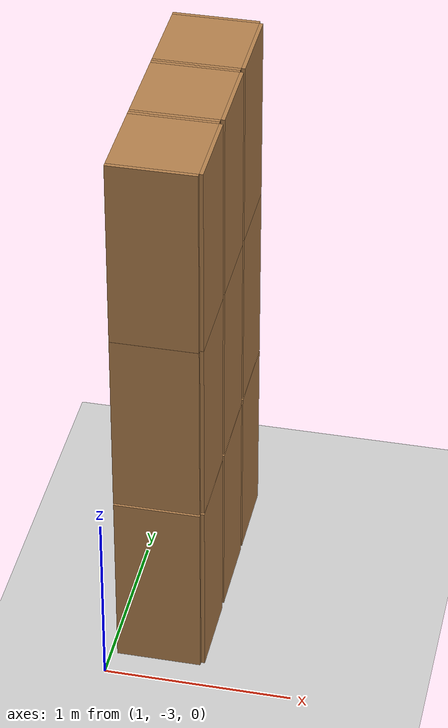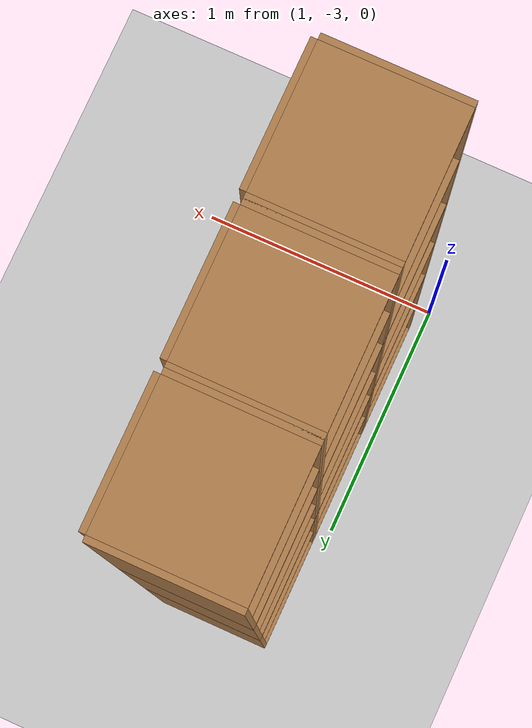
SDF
<sdf version="1.6">
 <world name="default">
  <model name="ground_plane">
   <static>1</static>
   <link name="link">
    <collision name="collision">
     <geometry><plane><normal>0 0 1</normal><size>100 100</size></plane></geometry>
     <surface>
      <contact><collide_bitmask>65535</collide_bitmask></contact>
      <friction><ode><mu>100</mu><mu2>50</mu2></ode></friction>
     </surface>
    </collision>
    <visual name="visual">
     <cast_shadows>0</cast_shadows>
     <geometry><plane><normal>0 0 1</normal><size>100 100</size></plane></geometry>
     <material>
      <script><uri>file://media/materials/scripts/gazebo.material</uri><name>Gazebo/Grey</name></script>
     </material>
    </visual>
   </link>
  </model>
  <model name="Locker18_clone_3_clone">
   <model name="Locker18">
    <model name="Locker3">
     <model name="cabinet">
      <static>1</static>
      <link name="cabinet_bottom_plate">
       <inertial>
        <pose>0 0 -1 0 -0 0</pose>
        <inertia><ixx>2.05</ixx><ixy>0</ixy><ixz>0</ixz><iyy>2.05</iyy><iyz>0</iyz><izz>2.05</izz></inertia>
        <mass>25</mass>
       </inertial>
       <collision name="cabinet_bottom_plate_geom">
        <pose>0 0 0.01 0 -0 0</pose>
        <geometry><box><size>0.45 0.45 0.02</size></box></geometry>
       </collision>
       <visual name="cabinet_bottom_plate_geom_visual">
        <pose>0 0 0.01 0 -0 0</pose>
        <geometry><box><size>0.45 0.45 0.02</size></box></geometry>
        <material>
         <script><uri>file://media/materials/scripts/gazebo.material</uri><name>Gazebo/Wood</name></script>
        </material>
       </visual>
       <collision name="cabinet_bottom_plate_geom_cabinet_back_plate">
        <pose>0.235 0 0.51 0 -0 0</pose>
        <geometry><box><size>0.02 0.45 1.02</size></box></geometry>
       </collision>
       <visual name="cabinet_bottom_plate_geom_cabinet_back_plate_visual">
        <pose>0.235 0 0.51 0 -0 0</pose>
        <geometry><box><size>0.02 0.45 1.02</size></box></geometry>
        <material>
         <script><uri>file://media/materials/scripts/gazebo.material</uri><name>Gazebo/Wood</name></script>
        </material>
       </visual>
       <collision name="cabinet_bottom_plate_geom_cabinet_left_plate">
        <pose>0 0.235 0.51 0 -0 0</pose>
        <geometry><box><size>0.45 0.02 1.02</size></box></geometry>
       </collision>
       <visual name="cabinet_bottom_plate_geom_cabinet_left_plate_visual">
        <pose>0 0.235 0.51 0 -0 0</pose>
        <geometry><box><size>0.45 0.02 1.02</size></box></geometry>
        <material>
         <script><uri>file://media/materials/scripts/gazebo.material</uri><name>Gazebo/Wood</name></script>
        </material>
       </visual>
       <collision name="cabinet_bottom_plate_geom_cabinet_middle_plate">
        <pose>0 0 0.51 0 -0 0</pose>
        <geometry><box><size>0.45 0.45 0.02</size></box></geometry>
       </collision>
       <visual name="cabinet_bottom_plate_geom_cabinet_middle_plate_visual">
        <pose>0 0 0.51 0 -0 0</pose>
        <geometry><box><size>0.45 0.45 0.02</size></box></geometry>
        <material>
         <script><uri>file://media/materials/scripts/gazebo.material</uri><name>Gazebo/Wood</name></script>
        </material>
       </visual>
       <collision name="cabinet_bottom_plate_geom_cabinet_right_plate">
        <pose>0 -0.235 0.51 0 -0 0</pose>
        <geometry><box><size>0.45 0.02 1.02</size></box></geometry>
       </collision>
       <visual name="cabinet_bottom_plate_geom_cabinet_right_plate_visual">
        <pose>0 -0.235 0.51 0 -0 0</pose>
        <geometry><box><size>0.45 0.02 1.02</size></box></geometry>
        <material>
         <script><uri>file://media/materials/scripts/gazebo.material</uri><name>Gazebo/Wood</name></script>
        </material>
       </visual>
       <collision name="cabinet_bottom_plate_geom_cabinet_top_plate">
        <pose>0 0 1.01 0 -0 0</pose>
        <geometry><box><size>0.45 0.45 0.02</size></box></geometry>
       </collision>
       <visual name="cabinet_bottom_plate_geom_cabinet_top_plate_visual">
        <pose>0 0 1.01 0 -0 0</pose>
        <geometry><box><size>0.45 0.45 0.02</size></box></geometry>
        <material>
         <script><uri>file://media/materials/scripts/gazebo.material</uri><name>Gazebo/Wood</name></script>
        </material>
       </visual>
      </link>
      <pose>-0.676968 1.45758 0 0 -0 0</pose>
     </model>
     <model name="cabinet_clone">
      <static>1</static>
      <link name="cabinet_bottom_plate">
       <inertial>
        <pose>0 0 -1 0 -0 0</pose>
        <inertia><ixx>2.05</ixx><ixy>0</ixy><ixz>0</ixz><iyy>2.05</iyy><iyz>0</iyz><izz>2.05</izz></inertia>
        <mass>25</mass>
       </inertial>
       <collision name="cabinet_bottom_plate_geom">
        <pose>0 0 0.01 0 -0 0</pose>
        <geometry><box><size>0.45 0.45 0.02</size></box></geometry>
       </collision>
       <visual name="cabinet_bottom_plate_geom_visual">
        <pose>0 0 0.01 0 -0 0</pose>
        <geometry><box><size>0.45 0.45 0.02</size></box></geometry>
        <material>
         <script><uri>file://media/materials/scripts/gazebo.material</uri><name>Gazebo/Wood</name></script>
        </material>
       </visual>
       <collision name="cabinet_bottom_plate_geom_cabinet_back_plate">
        <pose>0.235 0 0.51 0 -0 0</pose>
        <geometry><box><size>0.02 0.45 1.02</size></box></geometry>
       </collision>
       <visual name="cabinet_bottom_plate_geom_cabinet_back_plate_visual">
        <pose>0.235 0 0.51 0 -0 0</pose>
        <geometry><box><size>0.02 0.45 1.02</size></box></geometry>
        <material>
         <script><uri>file://media/materials/scripts/gazebo.material</uri><name>Gazebo/Wood</name></script>
        </material>
       </visual>
       <collision name="cabinet_bottom_plate_geom_cabinet_left_plate">
        <pose>0 0.235 0.51 0 -0 0</pose>
        <geometry><box><size>0.45 0.02 1.02</size></box></geometry>
       </collision>
       <visual name="cabinet_bottom_plate_geom_cabinet_left_plate_visual">
        <pose>0 0.235 0.51 0 -0 0</pose>
        <geometry><box><size>0.45 0.02 1.02</size></box></geometry>
        <material>
         <script><uri>file://media/materials/scripts/gazebo.material</uri><name>Gazebo/Wood</name></script>
        </material>
       </visual>
       <collision name="cabinet_bottom_plate_geom_cabinet_middle_plate">
        <pose>0 0 0.51 0 -0 0</pose>
        <geometry><box><size>0.45 0.45 0.02</size></box></geometry>
       </collision>
       <visual name="cabinet_bottom_plate_geom_cabinet_middle_plate_visual">
        <pose>0 0 0.51 0 -0 0</pose>
        <geometry><box><size>0.45 0.45 0.02</size></box></geometry>
        <material>
         <script><uri>file://media/materials/scripts/gazebo.material</uri><name>Gazebo/Wood</name></script>
        </material>
       </visual>
       <collision name="cabinet_bottom_plate_geom_cabinet_right_plate">
        <pose>0 -0.235 0.51 0 -0 0</pose>
        <geometry><box><size>0.45 0.02 1.02</size></box></geometry>
       </collision>
       <visual name="cabinet_bottom_plate_geom_cabinet_right_plate_visual">
        <pose>0 -0.235 0.51 0 -0 0</pose>
        <geometry><box><size>0.45 0.02 1.02</size></box></geometry>
        <material>
         <script><uri>file://media/materials/scripts/gazebo.material</uri><name>Gazebo/Wood</name></script>
        </material>
       </visual>
       <collision name="cabinet_bottom_plate_geom_cabinet_top_plate">
        <pose>0 0 1.01 0 -0 0</pose>
        <geometry><box><size>0.45 0.45 0.02</size></box></geometry>
       </collision>
       <visual name="cabinet_bottom_plate_geom_cabinet_top_plate_visual">
        <pose>0 0 1.01 0 -0 0</pose>
        <geometry><box><size>0.45 0.45 0.02</size></box></geometry>
        <material>
         <script><uri>file://media/materials/scripts/gazebo.material</uri><name>Gazebo/Wood</name></script>
        </material>
       </visual>
      </link>
      <pose>-0.676968 0.970971 0 0 -0 0</pose>
     </model>
     <model name="cabinet_clone_0">
      <static>1</static>
      <link name="cabinet_bottom_plate">
       <inertial>
        <pose>0 0 -1 0 -0 0</pose>
        <inertia><ixx>2.05</ixx><ixy>0</ixy><ixz>0</ixz><iyy>2.05</iyy><iyz>0</iyz><izz>2.05</izz></inertia>
        <mass>25</mass>
       </inertial>
       <collision name="cabinet_bottom_plate_geom">
        <pose>0 0 0.01 0 -0 0</pose>
        <geometry><box><size>0.45 0.45 0.02</size></box></geometry>
       </collision>
       <visual name="cabinet_bottom_plate_geom_visual">
        <pose>0 0 0.01 0 -0 0</pose>
        <geometry><box><size>0.45 0.45 0.02</size></box></geometry>
        <material>
         <script><uri>file://media/materials/scripts/gazebo.material</uri><name>Gazebo/Wood</name></script>
        </material>
       </visual>
       <collision name="cabinet_bottom_plate_geom_cabinet_back_plate">
        <pose>0.235 0 0.51 0 -0 0</pose>
        <geometry><box><size>0.02 0.45 1.02</size></box></geometry>
       </collision>
       <visual name="cabinet_bottom_plate_geom_cabinet_back_plate_visual">
        <pose>0.235 0 0.51 0 -0 0</pose>
        <geometry><box><size>0.02 0.45 1.02</size></box></geometry>
        <material>
         <script><uri>file://media/materials/scripts/gazebo.material</uri><name>Gazebo/Wood</name></script>
        </material>
       </visual>
       <collision name="cabinet_bottom_plate_geom_cabinet_left_plate">
        <pose>0 0.235 0.51 0 -0 0</pose>
        <geometry><box><size>0.45 0.02 1.02</size></box></geometry>
       </collision>
       <visual name="cabinet_bottom_plate_geom_cabinet_left_plate_visual">
        <pose>0 0.235 0.51 0 -0 0</pose>
        <geometry><box><size>0.45 0.02 1.02</size></box></geometry>
        <material>
         <script><uri>file://media/materials/scripts/gazebo.material</uri><name>Gazebo/Wood</name></script>
        </material>
       </visual>
       <collision name="cabinet_bottom_plate_geom_cabinet_middle_plate">
        <pose>0 0 0.51 0 -0 0</pose>
        <geometry><box><size>0.45 0.45 0.02</size></box></geometry>
       </collision>
       <visual name="cabinet_bottom_plate_geom_cabinet_middle_plate_visual">
        <pose>0 0 0.51 0 -0 0</pose>
        <geometry><box><size>0.45 0.45 0.02</size></box></geometry>
        <material>
         <script><uri>file://media/materials/scripts/gazebo.material</uri><name>Gazebo/Wood</name></script>
        </material>
       </visual>
       <collision name="cabinet_bottom_plate_geom_cabinet_right_plate">
        <pose>0 -0.235 0.51 0 -0 0</pose>
        <geometry><box><size>0.45 0.02 1.02</size></box></geometry>
       </collision>
       <visual name="cabinet_bottom_plate_geom_cabinet_right_plate_visual">
        <pose>0 -0.235 0.51 0 -0 0</pose>
        <geometry><box><size>0.45 0.02 1.02</size></box></geometry>
        <material>
         <script><uri>file://media/materials/scripts/gazebo.material</uri><name>Gazebo/Wood</name></script>
        </material>
       </visual>
       <collision name="cabinet_bottom_plate_geom_cabinet_top_plate">
        <pose>0 0 1.01 0 -0 0</pose>
        <geometry><box><size>0.45 0.45 0.02</size></box></geometry>
       </collision>
       <visual name="cabinet_bottom_plate_geom_cabinet_top_plate_visual">
        <pose>0 0 1.01 0 -0 0</pose>
        <geometry><box><size>0.45 0.45 0.02</size></box></geometry>
        <material>
         <script><uri>file://media/materials/scripts/gazebo.material</uri><name>Gazebo/Wood</name></script>
        </material>
       </visual>
      </link>
      <pose>-0.676968 0.48391 0 0 -0 0</pose>
     </model>
     <static>0</static>
     <pose>0 3e-06 -1.02763 0 -0 0</pose>
    </model>
    <model name="Locker3_clone">
     <model name="cabinet">
      <static>1</static>
      <link name="cabinet_bottom_plate">
       <inertial>
        <pose>0 0 -1 0 -0 0</pose>
        <inertia><ixx>2.05</ixx><ixy>0</ixy><ixz>0</ixz><iyy>2.05</iyy><iyz>0</iyz><izz>2.05</izz></inertia>
        <mass>25</mass>
       </inertial>
       <collision name="cabinet_bottom_plate_geom">
        <pose>0 0 0.01 0 -0 0</pose>
        <geometry><box><size>0.45 0.45 0.02</size></box></geometry>
       </collision>
       <visual name="cabinet_bottom_plate_geom_visual">
        <pose>0 0 0.01 0 -0 0</pose>
        <geometry><box><size>0.45 0.45 0.02</size></box></geometry>
        <material>
         <script><uri>file://media/materials/scripts/gazebo.material</uri><name>Gazebo/Wood</name></script>
        </material>
       </visual>
       <collision name="cabinet_bottom_plate_geom_cabinet_back_plate">
        <pose>0.235 0 0.51 0 -0 0</pose>
        <geometry><box><size>0.02 0.45 1.02</size></box></geometry>
       </collision>
       <visual name="cabinet_bottom_plate_geom_cabinet_back_plate_visual">
        <pose>0.235 0 0.51 0 -0 0</pose>
        <geometry><box><size>0.02 0.45 1.02</size></box></geometry>
        <material>
         <script><uri>file://media/materials/scripts/gazebo.material</uri><name>Gazebo/Wood</name></script>
        </material>
       </visual>
       <collision name="cabinet_bottom_plate_geom_cabinet_left_plate">
        <pose>0 0.235 0.51 0 -0 0</pose>
        <geometry><box><size>0.45 0.02 1.02</size></box></geometry>
       </collision>
       <visual name="cabinet_bottom_plate_geom_cabinet_left_plate_visual">
        <pose>0 0.235 0.51 0 -0 0</pose>
        <geometry><box><size>0.45 0.02 1.02</size></box></geometry>
        <material>
         <script><uri>file://media/materials/scripts/gazebo.material</uri><name>Gazebo/Wood</name></script>
        </material>
       </visual>
       <collision name="cabinet_bottom_plate_geom_cabinet_middle_plate">
        <pose>0 0 0.51 0 -0 0</pose>
        <geometry><box><size>0.45 0.45 0.02</size></box></geometry>
       </collision>
       <visual name="cabinet_bottom_plate_geom_cabinet_middle_plate_visual">
        <pose>0 0 0.51 0 -0 0</pose>
        <geometry><box><size>0.45 0.45 0.02</size></box></geometry>
        <material>
         <script><uri>file://media/materials/scripts/gazebo.material</uri><name>Gazebo/Wood</name></script>
        </material>
       </visual>
       <collision name="cabinet_bottom_plate_geom_cabinet_right_plate">
        <pose>0 -0.235 0.51 0 -0 0</pose>
        <geometry><box><size>0.45 0.02 1.02</size></box></geometry>
       </collision>
       <visual name="cabinet_bottom_plate_geom_cabinet_right_plate_visual">
        <pose>0 -0.235 0.51 0 -0 0</pose>
        <geometry><box><size>0.45 0.02 1.02</size></box></geometry>
        <material>
         <script><uri>file://media/materials/scripts/gazebo.material</uri><name>Gazebo/Wood</name></script>
        </material>
       </visual>
       <collision name="cabinet_bottom_plate_geom_cabinet_top_plate">
        <pose>0 0 1.01 0 -0 0</pose>
        <geometry><box><size>0.45 0.45 0.02</size></box></geometry>
       </collision>
       <visual name="cabinet_bottom_plate_geom_cabinet_top_plate_visual">
        <pose>0 0 1.01 0 -0 0</pose>
        <geometry><box><size>0.45 0.45 0.02</size></box></geometry>
        <material>
         <script><uri>file://media/materials/scripts/gazebo.material</uri><name>Gazebo/Wood</name></script>
        </material>
       </visual>
      </link>
      <pose>-0.676968 1.45758 0 0 -0 0</pose>
     </model>
     <model name="cabinet_clone">
      <static>1</static>
      <link name="cabinet_bottom_plate">
       <inertial>
        <pose>0 0 -1 0 -0 0</pose>
        <inertia><ixx>2.05</ixx><ixy>0</ixy><ixz>0</ixz><iyy>2.05</iyy><iyz>0</iyz><izz>2.05</izz></inertia>
        <mass>25</mass>
       </inertial>
       <collision name="cabinet_bottom_plate_geom">
        <pose>0 0 0.01 0 -0 0</pose>
        <geometry><box><size>0.45 0.45 0.02</size></box></geometry>
       </collision>
       <visual name="cabinet_bottom_plate_geom_visual">
        <pose>0 0 0.01 0 -0 0</pose>
        <geometry><box><size>0.45 0.45 0.02</size></box></geometry>
        <material>
         <script><uri>file://media/materials/scripts/gazebo.material</uri><name>Gazebo/Wood</name></script>
        </material>
       </visual>
       <collision name="cabinet_bottom_plate_geom_cabinet_back_plate">
        <pose>0.235 0 0.51 0 -0 0</pose>
        <geometry><box><size>0.02 0.45 1.02</size></box></geometry>
       </collision>
       <visual name="cabinet_bottom_plate_geom_cabinet_back_plate_visual">
        <pose>0.235 0 0.51 0 -0 0</pose>
        <geometry><box><size>0.02 0.45 1.02</size></box></geometry>
        <material>
         <script><uri>file://media/materials/scripts/gazebo.material</uri><name>Gazebo/Wood</name></script>
        </material>
       </visual>
       <collision name="cabinet_bottom_plate_geom_cabinet_left_plate">
        <pose>0 0.235 0.51 0 -0 0</pose>
        <geometry><box><size>0.45 0.02 1.02</size></box></geometry>
       </collision>
       <visual name="cabinet_bottom_plate_geom_cabinet_left_plate_visual">
        <pose>0 0.235 0.51 0 -0 0</pose>
        <geometry><box><size>0.45 0.02 1.02</size></box></geometry>
        <material>
         <script><uri>file://media/materials/scripts/gazebo.material</uri><name>Gazebo/Wood</name></script>
        </material>
       </visual>
       <collision name="cabinet_bottom_plate_geom_cabinet_middle_plate">
        <pose>0 0 0.51 0 -0 0</pose>
        <geometry><box><size>0.45 0.45 0.02</size></box></geometry>
       </collision>
       <visual name="cabinet_bottom_plate_geom_cabinet_middle_plate_visual">
        <pose>0 0 0.51 0 -0 0</pose>
        <geometry><box><size>0.45 0.45 0.02</size></box></geometry>
        <material>
         <script><uri>file://media/materials/scripts/gazebo.material</uri><name>Gazebo/Wood</name></script>
        </material>
       </visual>
       <collision name="cabinet_bottom_plate_geom_cabinet_right_plate">
        <pose>0 -0.235 0.51 0 -0 0</pose>
        <geometry><box><size>0.45 0.02 1.02</size></box></geometry>
       </collision>
       <visual name="cabinet_bottom_plate_geom_cabinet_right_plate_visual">
        <pose>0 -0.235 0.51 0 -0 0</pose>
        <geometry><box><size>0.45 0.02 1.02</size></box></geometry>
        <material>
         <script><uri>file://media/materials/scripts/gazebo.material</uri><name>Gazebo/Wood</name></script>
        </material>
       </visual>
       <collision name="cabinet_bottom_plate_geom_cabinet_top_plate">
        <pose>0 0 1.01 0 -0 0</pose>
        <geometry><box><size>0.45 0.45 0.02</size></box></geometry>
       </collision>
       <visual name="cabinet_bottom_plate_geom_cabinet_top_plate_visual">
        <pose>0 0 1.01 0 -0 0</pose>
        <geometry><box><size>0.45 0.45 0.02</size></box></geometry>
        <material>
         <script><uri>file://media/materials/scripts/gazebo.material</uri><name>Gazebo/Wood</name></script>
        </material>
       </visual>
      </link>
      <pose>-0.676968 0.970971 0 0 -0 0</pose>
     </model>
     <model name="cabinet_clone_0">
      <static>1</static>
      <link name="cabinet_bottom_plate">
       <inertial>
        <pose>0 0 -1 0 -0 0</pose>
        <inertia><ixx>2.05</ixx><ixy>0</ixy><ixz>0</ixz><iyy>2.05</iyy><iyz>0</iyz><izz>2.05</izz></inertia>
        <mass>25</mass>
       </inertial>
       <collision name="cabinet_bottom_plate_geom">
        <pose>0 0 0.01 0 -0 0</pose>
        <geometry><box><size>0.45 0.45 0.02</size></box></geometry>
       </collision>
       <visual name="cabinet_bottom_plate_geom_visual">
        <pose>0 0 0.01 0 -0 0</pose>
        <geometry><box><size>0.45 0.45 0.02</size></box></geometry>
        <material>
         <script><uri>file://media/materials/scripts/gazebo.material</uri><name>Gazebo/Wood</name></script>
        </material>
       </visual>
       <collision name="cabinet_bottom_plate_geom_cabinet_back_plate">
        <pose>0.235 0 0.51 0 -0 0</pose>
        <geometry><box><size>0.02 0.45 1.02</size></box></geometry>
       </collision>
       <visual name="cabinet_bottom_plate_geom_cabinet_back_plate_visual">
        <pose>0.235 0 0.51 0 -0 0</pose>
        <geometry><box><size>0.02 0.45 1.02</size></box></geometry>
        <material>
         <script><uri>file://media/materials/scripts/gazebo.material</uri><name>Gazebo/Wood</name></script>
        </material>
       </visual>
       <collision name="cabinet_bottom_plate_geom_cabinet_left_plate">
        <pose>0 0.235 0.51 0 -0 0</pose>
        <geometry><box><size>0.45 0.02 1.02</size></box></geometry>
       </collision>
       <visual name="cabinet_bottom_plate_geom_cabinet_left_plate_visual">
        <pose>0 0.235 0.51 0 -0 0</pose>
        <geometry><box><size>0.45 0.02 1.02</size></box></geometry>
        <material>
         <script><uri>file://media/materials/scripts/gazebo.material</uri><name>Gazebo/Wood</name></script>
        </material>
       </visual>
       <collision name="cabinet_bottom_plate_geom_cabinet_middle_plate">
        <pose>0 0 0.51 0 -0 0</pose>
        <geometry><box><size>0.45 0.45 0.02</size></box></geometry>
       </collision>
       <visual name="cabinet_bottom_plate_geom_cabinet_middle_plate_visual">
        <pose>0 0 0.51 0 -0 0</pose>
        <geometry><box><size>0.45 0.45 0.02</size></box></geometry>
        <material>
         <script><uri>file://media/materials/scripts/gazebo.material</uri><name>Gazebo/Wood</name></script>
        </material>
       </visual>
       <collision name="cabinet_bottom_plate_geom_cabinet_right_plate">
        <pose>0 -0.235 0.51 0 -0 0</pose>
        <geometry><box><size>0.45 0.02 1.02</size></box></geometry>
       </collision>
       <visual name="cabinet_bottom_plate_geom_cabinet_right_plate_visual">
        <pose>0 -0.235 0.51 0 -0 0</pose>
        <geometry><box><size>0.45 0.02 1.02</size></box></geometry>
        <material>
         <script><uri>file://media/materials/scripts/gazebo.material</uri><name>Gazebo/Wood</name></script>
        </material>
       </visual>
       <collision name="cabinet_bottom_plate_geom_cabinet_top_plate">
        <pose>0 0 1.01 0 -0 0</pose>
        <geometry><box><size>0.45 0.45 0.02</size></box></geometry>
       </collision>
       <visual name="cabinet_bottom_plate_geom_cabinet_top_plate_visual">
        <pose>0 0 1.01 0 -0 0</pose>
        <geometry><box><size>0.45 0.45 0.02</size></box></geometry>
        <material>
         <script><uri>file://media/materials/scripts/gazebo.material</uri><name>Gazebo/Wood</name></script>
        </material>
       </visual>
      </link>
      <pose>-0.676968 0.48391 0 0 -0 0</pose>
     </model>
     <static>0</static>
     <pose>0 3e-06 0.003717 0 -0 0</pose>
    </model>
    <model name="Locker3_clone_clone">
     <model name="cabinet">
      <static>1</static>
      <link name="cabinet_bottom_plate">
       <inertial>
        <pose>0 0 -1 0 -0 0</pose>
        <inertia><ixx>2.05</ixx><ixy>0</ixy><ixz>0</ixz><iyy>2.05</iyy><iyz>0</iyz><izz>2.05</izz></inertia>
        <mass>25</mass>
       </inertial>
       <collision name="cabinet_bottom_plate_geom">
        <pose>0 0 0.01 0 -0 0</pose>
        <geometry><box><size>0.45 0.45 0.02</size></box></geometry>
       </collision>
       <visual name="cabinet_bottom_plate_geom_visual">
        <pose>0 0 0.01 0 -0 0</pose>
        <geometry><box><size>0.45 0.45 0.02</size></box></geometry>
        <material>
         <script><uri>file://media/materials/scripts/gazebo.material</uri><name>Gazebo/Wood</name></script>
        </material>
       </visual>
       <collision name="cabinet_bottom_plate_geom_cabinet_back_plate">
        <pose>0.235 0 0.51 0 -0 0</pose>
        <geometry><box><size>0.02 0.45 1.02</size></box></geometry>
       </collision>
       <visual name="cabinet_bottom_plate_geom_cabinet_back_plate_visual">
        <pose>0.235 0 0.51 0 -0 0</pose>
        <geometry><box><size>0.02 0.45 1.02</size></box></geometry>
        <material>
         <script><uri>file://media/materials/scripts/gazebo.material</uri><name>Gazebo/Wood</name></script>
        </material>
       </visual>
       <collision name="cabinet_bottom_plate_geom_cabinet_left_plate">
        <pose>0 0.235 0.51 0 -0 0</pose>
        <geometry><box><size>0.45 0.02 1.02</size></box></geometry>
       </collision>
       <visual name="cabinet_bottom_plate_geom_cabinet_left_plate_visual">
        <pose>0 0.235 0.51 0 -0 0</pose>
        <geometry><box><size>0.45 0.02 1.02</size></box></geometry>
        <material>
         <script><uri>file://media/materials/scripts/gazebo.material</uri><name>Gazebo/Wood</name></script>
        </material>
       </visual>
       <collision name="cabinet_bottom_plate_geom_cabinet_middle_plate">
        <pose>0 0 0.51 0 -0 0</pose>
        <geometry><box><size>0.45 0.45 0.02</size></box></geometry>
       </collision>
       <visual name="cabinet_bottom_plate_geom_cabinet_middle_plate_visual">
        <pose>0 0 0.51 0 -0 0</pose>
        <geometry><box><size>0.45 0.45 0.02</size></box></geometry>
        <material>
         <script><uri>file://media/materials/scripts/gazebo.material</uri><name>Gazebo/Wood</name></script>
        </material>
       </visual>
       <collision name="cabinet_bottom_plate_geom_cabinet_right_plate">
        <pose>0 -0.235 0.51 0 -0 0</pose>
        <geometry><box><size>0.45 0.02 1.02</size></box></geometry>
       </collision>
       <visual name="cabinet_bottom_plate_geom_cabinet_right_plate_visual">
        <pose>0 -0.235 0.51 0 -0 0</pose>
        <geometry><box><size>0.45 0.02 1.02</size></box></geometry>
        <material>
         <script><uri>file://media/materials/scripts/gazebo.material</uri><name>Gazebo/Wood</name></script>
        </material>
       </visual>
       <collision name="cabinet_bottom_plate_geom_cabinet_top_plate">
        <pose>0 0 1.01 0 -0 0</pose>
        <geometry><box><size>0.45 0.45 0.02</size></box></geometry>
       </collision>
       <visual name="cabinet_bottom_plate_geom_cabinet_top_plate_visual">
        <pose>0 0 1.01 0 -0 0</pose>
        <geometry><box><size>0.45 0.45 0.02</size></box></geometry>
        <material>
         <script><uri>file://media/materials/scripts/gazebo.material</uri><name>Gazebo/Wood</name></script>
        </material>
       </visual>
      </link>
      <pose>-0.676968 1.45758 0 0 -0 0</pose>
     </model>
     <model name="cabinet_clone">
      <static>1</static>
      <link name="cabinet_bottom_plate">
       <inertial>
        <pose>0 0 -1 0 -0 0</pose>
        <inertia><ixx>2.05</ixx><ixy>0</ixy><ixz>0</ixz><iyy>2.05</iyy><iyz>0</iyz><izz>2.05</izz></inertia>
        <mass>25</mass>
       </inertial>
       <collision name="cabinet_bottom_plate_geom">
        <pose>0 0 0.01 0 -0 0</pose>
        <geometry><box><size>0.45 0.45 0.02</size></box></geometry>
       </collision>
       <visual name="cabinet_bottom_plate_geom_visual">
        <pose>0 0 0.01 0 -0 0</pose>
        <geometry><box><size>0.45 0.45 0.02</size></box></geometry>
        <material>
         <script><uri>file://media/materials/scripts/gazebo.material</uri><name>Gazebo/Wood</name></script>
        </material>
       </visual>
       <collision name="cabinet_bottom_plate_geom_cabinet_back_plate">
        <pose>0.235 0 0.51 0 -0 0</pose>
        <geometry><box><size>0.02 0.45 1.02</size></box></geometry>
       </collision>
       <visual name="cabinet_bottom_plate_geom_cabinet_back_plate_visual">
        <pose>0.235 0 0.51 0 -0 0</pose>
        <geometry><box><size>0.02 0.45 1.02</size></box></geometry>
        <material>
         <script><uri>file://media/materials/scripts/gazebo.material</uri><name>Gazebo/Wood</name></script>
        </material>
       </visual>
       <collision name="cabinet_bottom_plate_geom_cabinet_left_plate">
        <pose>0 0.235 0.51 0 -0 0</pose>
        <geometry><box><size>0.45 0.02 1.02</size></box></geometry>
       </collision>
       <visual name="cabinet_bottom_plate_geom_cabinet_left_plate_visual">
        <pose>0 0.235 0.51 0 -0 0</pose>
        <geometry><box><size>0.45 0.02 1.02</size></box></geometry>
        <material>
         <script><uri>file://media/materials/scripts/gazebo.material</uri><name>Gazebo/Wood</name></script>
        </material>
       </visual>
       <collision name="cabinet_bottom_plate_geom_cabinet_middle_plate">
        <pose>0 0 0.51 0 -0 0</pose>
        <geometry><box><size>0.45 0.45 0.02</size></box></geometry>
       </collision>
       <visual name="cabinet_bottom_plate_geom_cabinet_middle_plate_visual">
        <pose>0 0 0.51 0 -0 0</pose>
        <geometry><box><size>0.45 0.45 0.02</size></box></geometry>
        <material>
         <script><uri>file://media/materials/scripts/gazebo.material</uri><name>Gazebo/Wood</name></script>
        </material>
       </visual>
       <collision name="cabinet_bottom_plate_geom_cabinet_right_plate">
        <pose>0 -0.235 0.51 0 -0 0</pose>
        <geometry><box><size>0.45 0.02 1.02</size></box></geometry>
       </collision>
       <visual name="cabinet_bottom_plate_geom_cabinet_right_plate_visual">
        <pose>0 -0.235 0.51 0 -0 0</pose>
        <geometry><box><size>0.45 0.02 1.02</size></box></geometry>
        <material>
         <script><uri>file://media/materials/scripts/gazebo.material</uri><name>Gazebo/Wood</name></script>
        </material>
       </visual>
       <collision name="cabinet_bottom_plate_geom_cabinet_top_plate">
        <pose>0 0 1.01 0 -0 0</pose>
        <geometry><box><size>0.45 0.45 0.02</size></box></geometry>
       </collision>
       <visual name="cabinet_bottom_plate_geom_cabinet_top_plate_visual">
        <pose>0 0 1.01 0 -0 0</pose>
        <geometry><box><size>0.45 0.45 0.02</size></box></geometry>
        <material>
         <script><uri>file://media/materials/scripts/gazebo.material</uri><name>Gazebo/Wood</name></script>
        </material>
       </visual>
      </link>
      <pose>-0.676968 0.970971 0 0 -0 0</pose>
     </model>
     <model name="cabinet_clone_0">
      <static>1</static>
      <link name="cabinet_bottom_plate">
       <inertial>
        <pose>0 0 -1 0 -0 0</pose>
        <inertia><ixx>2.05</ixx><ixy>0</ixy><ixz>0</ixz><iyy>2.05</iyy><iyz>0</iyz><izz>2.05</izz></inertia>
        <mass>25</mass>
       </inertial>
       <collision name="cabinet_bottom_plate_geom">
        <pose>0 0 0.01 0 -0 0</pose>
        <geometry><box><size>0.45 0.45 0.02</size></box></geometry>
       </collision>
       <visual name="cabinet_bottom_plate_geom_visual">
        <pose>0 0 0.01 0 -0 0</pose>
        <geometry><box><size>0.45 0.45 0.02</size></box></geometry>
        <material>
         <script><uri>file://media/materials/scripts/gazebo.material</uri><name>Gazebo/Wood</name></script>
        </material>
       </visual>
       <collision name="cabinet_bottom_plate_geom_cabinet_back_plate">
        <pose>0.235 0 0.51 0 -0 0</pose>
        <geometry><box><size>0.02 0.45 1.02</size></box></geometry>
       </collision>
       <visual name="cabinet_bottom_plate_geom_cabinet_back_plate_visual">
        <pose>0.235 0 0.51 0 -0 0</pose>
        <geometry><box><size>0.02 0.45 1.02</size></box></geometry>
        <material>
         <script><uri>file://media/materials/scripts/gazebo.material</uri><name>Gazebo/Wood</name></script>
        </material>
       </visual>
       <collision name="cabinet_bottom_plate_geom_cabinet_left_plate">
        <pose>0 0.235 0.51 0 -0 0</pose>
        <geometry><box><size>0.45 0.02 1.02</size></box></geometry>
       </collision>
       <visual name="cabinet_bottom_plate_geom_cabinet_left_plate_visual">
        <pose>0 0.235 0.51 0 -0 0</pose>
        <geometry><box><size>0.45 0.02 1.02</size></box></geometry>
        <material>
         <script><uri>file://media/materials/scripts/gazebo.material</uri><name>Gazebo/Wood</name></script>
        </material>
       </visual>
       <collision name="cabinet_bottom_plate_geom_cabinet_middle_plate">
        <pose>0 0 0.51 0 -0 0</pose>
        <geometry><box><size>0.45 0.45 0.02</size></box></geometry>
       </collision>
       <visual name="cabinet_bottom_plate_geom_cabinet_middle_plate_visual">
        <pose>0 0 0.51 0 -0 0</pose>
        <geometry><box><size>0.45 0.45 0.02</size></box></geometry>
        <material>
         <script><uri>file://media/materials/scripts/gazebo.material</uri><name>Gazebo/Wood</name></script>
        </material>
       </visual>
       <collision name="cabinet_bottom_plate_geom_cabinet_right_plate">
        <pose>0 -0.235 0.51 0 -0 0</pose>
        <geometry><box><size>0.45 0.02 1.02</size></box></geometry>
       </collision>
       <visual name="cabinet_bottom_plate_geom_cabinet_right_plate_visual">
        <pose>0 -0.235 0.51 0 -0 0</pose>
        <geometry><box><size>0.45 0.02 1.02</size></box></geometry>
        <material>
         <script><uri>file://media/materials/scripts/gazebo.material</uri><name>Gazebo/Wood</name></script>
        </material>
       </visual>
       <collision name="cabinet_bottom_plate_geom_cabinet_top_plate">
        <pose>0 0 1.01 0 -0 0</pose>
        <geometry><box><size>0.45 0.45 0.02</size></box></geometry>
       </collision>
       <visual name="cabinet_bottom_plate_geom_cabinet_top_plate_visual">
        <pose>0 0 1.01 0 -0 0</pose>
        <geometry><box><size>0.45 0.45 0.02</size></box></geometry>
        <material>
         <script><uri>file://media/materials/scripts/gazebo.material</uri><name>Gazebo/Wood</name></script>
        </material>
       </visual>
      </link>
      <pose>-0.676968 0.48391 0 0 -0 0</pose>
     </model>
     <static>0</static>
     <pose>0 3e-06 1.02391 0 -0 0</pose>
    </model>
    <static>0</static>
    <pose>-0 4e-06 4e-06 0 -0 0</pose>
   </model>
   <static>0</static>
   <pose>1.95001 -3.15044 1.08672 0 -0 0</pose>
  </model>
 </world>
</sdf>
